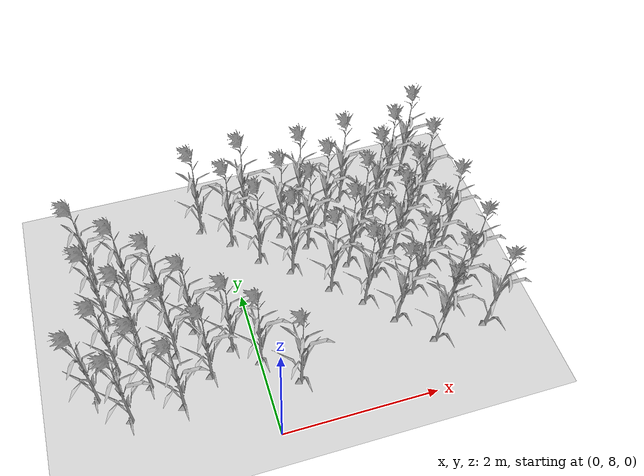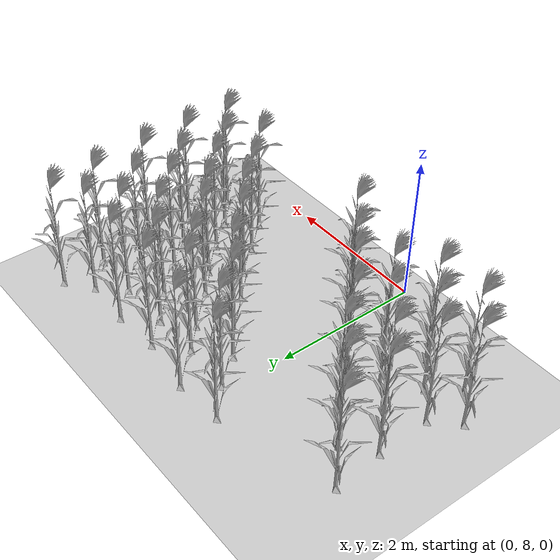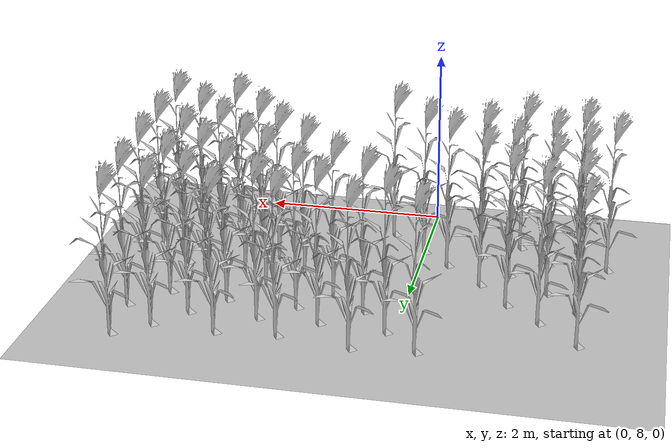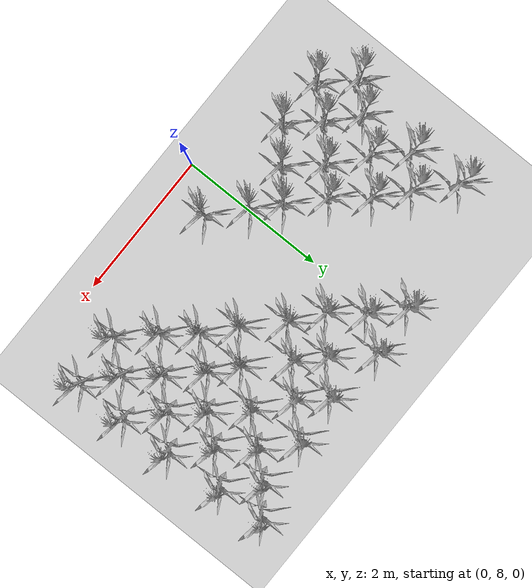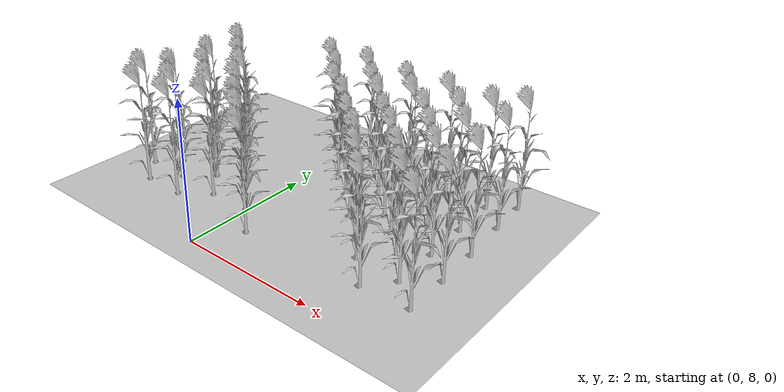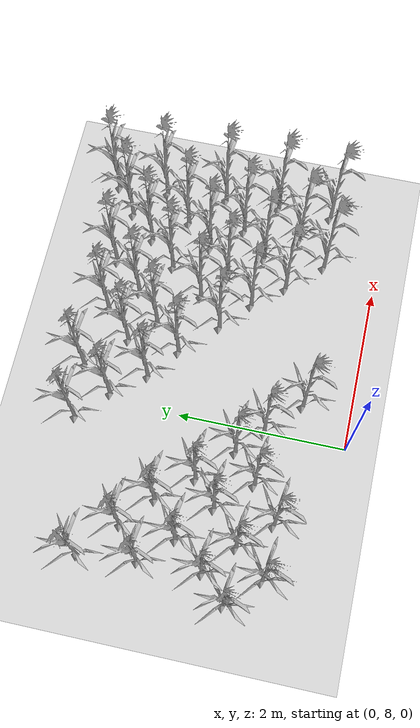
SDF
<sdf version="1.7">
 <world name="farmland_world">
  <model name="ground_plane">
   <static>1</static>
   <link name="link">
    <collision name="collision">
     <geometry><plane><normal>0 0 1</normal><size>40.0 40.0</size></plane></geometry>
     <surface><friction><ode><mu>100</mu><mu2>50</mu2></ode></friction></surface>
    </collision>
    <visual name="visual">
     <cast_shadows>0</cast_shadows>
     <geometry><plane><normal>0 0 1</normal><size>40.0 40.0</size></plane></geometry>
     <material>
      <script><uri>file://media/materials/scripts/gazebo.material</uri><name>Gazebo/Grey</name></script>
     </material>
    </visual>
   </link>
  </model>
  <model name="tree_3_147">
   <static>1</static>
   <link name="link">
    <collision name="collision">
     <geometry><mesh><uri>model://Corn_low_poly/corn.obj</uri><scale>1 1 1</scale></mesh></geometry>
     <surface><friction><ode><mu>100</mu><mu2>50</mu2></ode></friction></surface>
    </collision>
    <visual name="visual">
     <geometry><mesh><uri>model://Corn_low_poly/corn.obj</uri><scale>1 1 1</scale></mesh></geometry>
    </visual>
   </link>
   <pose>-1.6698832942147737 8.684003580478421 0 0 0 0</pose>
  </model>
  <model name="tree_3_148">
   <static>1</static>
   <link name="link">
    <collision name="collision">
     <geometry><mesh><uri>model://Corn_low_poly/corn.obj</uri><scale>1 1 1</scale></mesh></geometry>
     <surface><friction><ode><mu>100</mu><mu2>50</mu2></ode></friction></surface>
    </collision>
    <visual name="visual">
     <geometry><mesh><uri>model://Corn_low_poly/corn.obj</uri><scale>1 1 1</scale></mesh></geometry>
    </visual>
   </link>
   <pose>-2.0231028633627925 9.056360033352803 0 0 0 0</pose>
  </model>
  <model name="tree_3_188">
   <static>1</static>
   <link name="link">
    <collision name="collision">
     <geometry><mesh><uri>model://Corn_low_poly/corn.obj</uri><scale>1 1 1</scale></mesh></geometry>
     <surface><friction><ode><mu>100</mu><mu2>50</mu2></ode></friction></surface>
    </collision>
    <visual name="visual">
     <geometry><mesh><uri>model://Corn_low_poly/corn.obj</uri><scale>1 1 1</scale></mesh></geometry>
    </visual>
   </link>
   <pose>-1.0324576663026956 8.67484243706629 0 0 0 0</pose>
  </model>
  <model name="tree_3_189">
   <static>1</static>
   <link name="link">
    <collision name="collision">
     <geometry><mesh><uri>model://Corn_low_poly/corn.obj</uri><scale>1 1 1</scale></mesh></geometry>
     <surface><friction><ode><mu>100</mu><mu2>50</mu2></ode></friction></surface>
    </collision>
    <visual name="visual">
     <geometry><mesh><uri>model://Corn_low_poly/corn.obj</uri><scale>1 1 1</scale></mesh></geometry>
    </visual>
   </link>
   <pose>-1.3681245685104535 9.045092246789922 0 0 0 0</pose>
  </model>
  <model name="tree_3_190">
   <static>1</static>
   <link name="link">
    <collision name="collision">
     <geometry><mesh><uri>model://Corn_low_poly/corn.obj</uri><scale>1 1 1</scale></mesh></geometry>
     <surface><friction><ode><mu>100</mu><mu2>50</mu2></ode></friction></surface>
    </collision>
    <visual name="visual">
     <geometry><mesh><uri>model://Corn_low_poly/corn.obj</uri><scale>1 1 1</scale></mesh></geometry>
    </visual>
   </link>
   <pose>-1.7273456111712864 9.359587153147258 0 0 0 0</pose>
  </model>
  <model name="tree_3_230">
   <static>1</static>
   <link name="link">
    <collision name="collision">
     <geometry><mesh><uri>model://Corn_low_poly/corn.obj</uri><scale>1 1 1</scale></mesh></geometry>
     <surface><friction><ode><mu>100</mu><mu2>50</mu2></ode></friction></surface>
    </collision>
    <visual name="visual">
     <geometry><mesh><uri>model://Corn_low_poly/corn.obj</uri><scale>1 1 1</scale></mesh></geometry>
    </visual>
   </link>
   <pose>-0.6227697089116335 8.983831732793778 0 0 0 0</pose>
  </model>
  <model name="tree_3_231">
   <static>1</static>
   <link name="link">
    <collision name="collision">
     <geometry><mesh><uri>model://Corn_low_poly/corn.obj</uri><scale>1 1 1</scale></mesh></geometry>
     <surface><friction><ode><mu>100</mu><mu2>50</mu2></ode></friction></surface>
    </collision>
    <visual name="visual">
     <geometry><mesh><uri>model://Corn_low_poly/corn.obj</uri><scale>1 1 1</scale></mesh></geometry>
    </visual>
   </link>
   <pose>-0.9834032215938407 9.381716510900937 0 0 0 0</pose>
  </model>
  <model name="tree_3_232">
   <static>1</static>
   <link name="link">
    <collision name="collision">
     <geometry><mesh><uri>model://Corn_low_poly/corn.obj</uri><scale>1 1 1</scale></mesh></geometry>
     <surface><friction><ode><mu>100</mu><mu2>50</mu2></ode></friction></surface>
    </collision>
    <visual name="visual">
     <geometry><mesh><uri>model://Corn_low_poly/corn.obj</uri><scale>1 1 1</scale></mesh></geometry>
    </visual>
   </link>
   <pose>-1.423567346140039 9.731796113373099 0 0 0 0</pose>
  </model>
  <model name="tree_3_233">
   <static>1</static>
   <link name="link">
    <collision name="collision">
     <geometry><mesh><uri>model://Corn_low_poly/corn.obj</uri><scale>1 1 1</scale></mesh></geometry>
     <surface><friction><ode><mu>100</mu><mu2>50</mu2></ode></friction></surface>
    </collision>
    <visual name="visual">
     <geometry><mesh><uri>model://Corn_low_poly/corn.obj</uri><scale>1 1 1</scale></mesh></geometry>
    </visual>
   </link>
   <pose>-1.7516886819659563 10.099647845330976 0 0 0 0</pose>
  </model>
  <model name="tree_3_270">
   <static>1</static>
   <link name="link">
    <collision name="collision">
     <geometry><mesh><uri>model://Corn_low_poly/corn.obj</uri><scale>1 1 1</scale></mesh></geometry>
     <surface><friction><ode><mu>100</mu><mu2>50</mu2></ode></friction></surface>
    </collision>
    <visual name="visual">
     <geometry><mesh><uri>model://Corn_low_poly/corn.obj</uri><scale>1 1 1</scale></mesh></geometry>
    </visual>
   </link>
   <pose>0.4287412737426988 8.60904060151284 0 0 0 0</pose>
  </model>
  <model name="tree_3_271">
   <static>1</static>
   <link name="link">
    <collision name="collision">
     <geometry><mesh><uri>model://Corn_low_poly/corn.obj</uri><scale>1 1 1</scale></mesh></geometry>
     <surface><friction><ode><mu>100</mu><mu2>50</mu2></ode></friction></surface>
    </collision>
    <visual name="visual">
     <geometry><mesh><uri>model://Corn_low_poly/corn.obj</uri><scale>1 1 1</scale></mesh></geometry>
    </visual>
   </link>
   <pose>0.01727305964461877 8.998061278527281 0 0 0 0</pose>
  </model>
  <model name="tree_3_272">
   <static>1</static>
   <link name="link">
    <collision name="collision">
     <geometry><mesh><uri>model://Corn_low_poly/corn.obj</uri><scale>1 1 1</scale></mesh></geometry>
     <surface><friction><ode><mu>100</mu><mu2>50</mu2></ode></friction></surface>
    </collision>
    <visual name="visual">
     <geometry><mesh><uri>model://Corn_low_poly/corn.obj</uri><scale>1 1 1</scale></mesh></geometry>
    </visual>
   </link>
   <pose>-0.2862148187049493 9.278467164036151 0 0 0 0</pose>
  </model>
  <model name="tree_3_273">
   <static>1</static>
   <link name="link">
    <collision name="collision">
     <geometry><mesh><uri>model://Corn_low_poly/corn.obj</uri><scale>1 1 1</scale></mesh></geometry>
     <surface><friction><ode><mu>100</mu><mu2>50</mu2></ode></friction></surface>
    </collision>
    <visual name="visual">
     <geometry><mesh><uri>model://Corn_low_poly/corn.obj</uri><scale>1 1 1</scale></mesh></geometry>
    </visual>
   </link>
   <pose>-0.6956438976033296 9.661832379889814 0 0 0 0</pose>
  </model>
  <model name="tree_3_274">
   <static>1</static>
   <link name="link">
    <collision name="collision">
     <geometry><mesh><uri>model://Corn_low_poly/corn.obj</uri><scale>1 1 1</scale></mesh></geometry>
     <surface><friction><ode><mu>100</mu><mu2>50</mu2></ode></friction></surface>
    </collision>
    <visual name="visual">
     <geometry><mesh><uri>model://Corn_low_poly/corn.obj</uri><scale>1 1 1</scale></mesh></geometry>
    </visual>
   </link>
   <pose>-1.026138375841834 10.068304449249503 0 0 0 0</pose>
  </model>
  <model name="tree_3_275">
   <static>1</static>
   <link name="link">
    <collision name="collision">
     <geometry><mesh><uri>model://Corn_low_poly/corn.obj</uri><scale>1 1 1</scale></mesh></geometry>
     <surface><friction><ode><mu>100</mu><mu2>50</mu2></ode></friction></surface>
    </collision>
    <visual name="visual">
     <geometry><mesh><uri>model://Corn_low_poly/corn.obj</uri><scale>1 1 1</scale></mesh></geometry>
    </visual>
   </link>
   <pose>-1.3937179532228703 10.391156315983512 0 0 0 0</pose>
  </model>
  <model name="tree_3_276">
   <static>1</static>
   <link name="link">
    <collision name="collision">
     <geometry><mesh><uri>model://Corn_low_poly/corn.obj</uri><scale>1 1 1</scale></mesh></geometry>
     <surface><friction><ode><mu>100</mu><mu2>50</mu2></ode></friction></surface>
    </collision>
    <visual name="visual">
     <geometry><mesh><uri>model://Corn_low_poly/corn.obj</uri><scale>1 1 1</scale></mesh></geometry>
    </visual>
   </link>
   <pose>-1.8165411724044094 10.785292326297734 0 0 0 0</pose>
  </model>
  <model name="tree_3_318">
   <static>1</static>
   <link name="link">
    <collision name="collision">
     <geometry><mesh><uri>model://Corn_low_poly/corn.obj</uri><scale>1 1 1</scale></mesh></geometry>
     <surface><friction><ode><mu>100</mu><mu2>50</mu2></ode></friction></surface>
    </collision>
    <visual name="visual">
     <geometry><mesh><uri>model://Corn_low_poly/corn.obj</uri><scale>1 1 1</scale></mesh></geometry>
    </visual>
   </link>
   <pose>2.2659452892722256 8.682668257066688 0 0 0 0</pose>
  </model>
  <model name="tree_3_319">
   <static>1</static>
   <link name="link">
    <collision name="collision">
     <geometry><mesh><uri>model://Corn_low_poly/corn.obj</uri><scale>1 1 1</scale></mesh></geometry>
     <surface><friction><ode><mu>100</mu><mu2>50</mu2></ode></friction></surface>
    </collision>
    <visual name="visual">
     <geometry><mesh><uri>model://Corn_low_poly/corn.obj</uri><scale>1 1 1</scale></mesh></geometry>
    </visual>
   </link>
   <pose>1.8826716434509898 9.09845080587184 0 0 0 0</pose>
  </model>
  <model name="tree_3_320">
   <static>1</static>
   <link name="link">
    <collision name="collision">
     <geometry><mesh><uri>model://Corn_low_poly/corn.obj</uri><scale>1 1 1</scale></mesh></geometry>
     <surface><friction><ode><mu>100</mu><mu2>50</mu2></ode></friction></surface>
    </collision>
    <visual name="visual">
     <geometry><mesh><uri>model://Corn_low_poly/corn.obj</uri><scale>1 1 1</scale></mesh></geometry>
    </visual>
   </link>
   <pose>1.5743008408131518 9.467142644033313 0 0 0 0</pose>
  </model>
  <model name="tree_3_321">
   <static>1</static>
   <link name="link">
    <collision name="collision">
     <geometry><mesh><uri>model://Corn_low_poly/corn.obj</uri><scale>1 1 1</scale></mesh></geometry>
     <surface><friction><ode><mu>100</mu><mu2>50</mu2></ode></friction></surface>
    </collision>
    <visual name="visual">
     <geometry><mesh><uri>model://Corn_low_poly/corn.obj</uri><scale>1 1 1</scale></mesh></geometry>
    </visual>
   </link>
   <pose>1.205267989947534 9.788326338943657 0 0 0 0</pose>
  </model>
  <model name="tree_3_322">
   <static>1</static>
   <link name="link">
    <collision name="collision">
     <geometry><mesh><uri>model://Corn_low_poly/corn.obj</uri><scale>1 1 1</scale></mesh></geometry>
     <surface><friction><ode><mu>100</mu><mu2>50</mu2></ode></friction></surface>
    </collision>
    <visual name="visual">
     <geometry><mesh><uri>model://Corn_low_poly/corn.obj</uri><scale>1 1 1</scale></mesh></geometry>
    </visual>
   </link>
   <pose>0.7910316731295477 10.206642116688158 0 0 0 0</pose>
  </model>
  <model name="tree_3_323">
   <static>1</static>
   <link name="link">
    <collision name="collision">
     <geometry><mesh><uri>model://Corn_low_poly/corn.obj</uri><scale>1 1 1</scale></mesh></geometry>
     <surface><friction><ode><mu>100</mu><mu2>50</mu2></ode></friction></surface>
    </collision>
    <visual name="visual">
     <geometry><mesh><uri>model://Corn_low_poly/corn.obj</uri><scale>1 1 1</scale></mesh></geometry>
    </visual>
   </link>
   <pose>0.40963449650853134 10.497197354040265 0 0 0 0</pose>
  </model>
  <model name="tree_3_324">
   <static>1</static>
   <link name="link">
    <collision name="collision">
     <geometry><mesh><uri>model://Corn_low_poly/corn.obj</uri><scale>1 1 1</scale></mesh></geometry>
     <surface><friction><ode><mu>100</mu><mu2>50</mu2></ode></friction></surface>
    </collision>
    <visual name="visual">
     <geometry><mesh><uri>model://Corn_low_poly/corn.obj</uri><scale>1 1 1</scale></mesh></geometry>
    </visual>
   </link>
   <pose>0.1059369709105368 10.885849402361316 0 0 0 0</pose>
  </model>
  <model name="tree_3_325">
   <static>1</static>
   <link name="link">
    <collision name="collision">
     <geometry><mesh><uri>model://Corn_low_poly/corn.obj</uri><scale>1 1 1</scale></mesh></geometry>
     <surface><friction><ode><mu>100</mu><mu2>50</mu2></ode></friction></surface>
    </collision>
    <visual name="visual">
     <geometry><mesh><uri>model://Corn_low_poly/corn.obj</uri><scale>1 1 1</scale></mesh></geometry>
    </visual>
   </link>
   <pose>-0.25831195070754537 11.223044054048293 0 0 0 0</pose>
  </model>
  <model name="tree_3_362">
   <static>1</static>
   <link name="link">
    <collision name="collision">
     <geometry><mesh><uri>model://Corn_low_poly/corn.obj</uri><scale>1 1 1</scale></mesh></geometry>
     <surface><friction><ode><mu>100</mu><mu2>50</mu2></ode></friction></surface>
    </collision>
    <visual name="visual">
     <geometry><mesh><uri>model://Corn_low_poly/corn.obj</uri><scale>1 1 1</scale></mesh></geometry>
    </visual>
   </link>
   <pose>2.9679946847305207 8.71973789109385 0 0 0 0</pose>
  </model>
  <model name="tree_3_363">
   <static>1</static>
   <link name="link">
    <collision name="collision">
     <geometry><mesh><uri>model://Corn_low_poly/corn.obj</uri><scale>1 1 1</scale></mesh></geometry>
     <surface><friction><ode><mu>100</mu><mu2>50</mu2></ode></friction></surface>
    </collision>
    <visual name="visual">
     <geometry><mesh><uri>model://Corn_low_poly/corn.obj</uri><scale>1 1 1</scale></mesh></geometry>
    </visual>
   </link>
   <pose>2.5686562969750737 9.050610059643711 0 0 0 0</pose>
  </model>
  <model name="tree_3_364">
   <static>1</static>
   <link name="link">
    <collision name="collision">
     <geometry><mesh><uri>model://Corn_low_poly/corn.obj</uri><scale>1 1 1</scale></mesh></geometry>
     <surface><friction><ode><mu>100</mu><mu2>50</mu2></ode></friction></surface>
    </collision>
    <visual name="visual">
     <geometry><mesh><uri>model://Corn_low_poly/corn.obj</uri><scale>1 1 1</scale></mesh></geometry>
    </visual>
   </link>
   <pose>2.2384284833241432 9.437294065062344 0 0 0 0</pose>
  </model>
  <model name="tree_3_365">
   <static>1</static>
   <link name="link">
    <collision name="collision">
     <geometry><mesh><uri>model://Corn_low_poly/corn.obj</uri><scale>1 1 1</scale></mesh></geometry>
     <surface><friction><ode><mu>100</mu><mu2>50</mu2></ode></friction></surface>
    </collision>
    <visual name="visual">
     <geometry><mesh><uri>model://Corn_low_poly/corn.obj</uri><scale>1 1 1</scale></mesh></geometry>
    </visual>
   </link>
   <pose>1.8677602767199182 9.825647747179543 0 0 0 0</pose>
  </model>
  <model name="tree_3_366">
   <static>1</static>
   <link name="link">
    <collision name="collision">
     <geometry><mesh><uri>model://Corn_low_poly/corn.obj</uri><scale>1 1 1</scale></mesh></geometry>
     <surface><friction><ode><mu>100</mu><mu2>50</mu2></ode></friction></surface>
    </collision>
    <visual name="visual">
     <geometry><mesh><uri>model://Corn_low_poly/corn.obj</uri><scale>1 1 1</scale></mesh></geometry>
    </visual>
   </link>
   <pose>1.5584682967251717 10.099687822793555 0 0 0 0</pose>
  </model>
  <model name="tree_3_367">
   <static>1</static>
   <link name="link">
    <collision name="collision">
     <geometry><mesh><uri>model://Corn_low_poly/corn.obj</uri><scale>1 1 1</scale></mesh></geometry>
     <surface><friction><ode><mu>100</mu><mu2>50</mu2></ode></friction></surface>
    </collision>
    <visual name="visual">
     <geometry><mesh><uri>model://Corn_low_poly/corn.obj</uri><scale>1 1 1</scale></mesh></geometry>
    </visual>
   </link>
   <pose>1.1150406828388488 10.548499294499596 0 0 0 0</pose>
  </model>
  <model name="tree_3_368">
   <static>1</static>
   <link name="link">
    <collision name="collision">
     <geometry><mesh><uri>model://Corn_low_poly/corn.obj</uri><scale>1 1 1</scale></mesh></geometry>
     <surface><friction><ode><mu>100</mu><mu2>50</mu2></ode></friction></surface>
    </collision>
    <visual name="visual">
     <geometry><mesh><uri>model://Corn_low_poly/corn.obj</uri><scale>1 1 1</scale></mesh></geometry>
    </visual>
   </link>
   <pose>0.8153150615937625 10.836321313926456 0 0 0 0</pose>
  </model>
  <model name="tree_3_369">
   <static>1</static>
   <link name="link">
    <collision name="collision">
     <geometry><mesh><uri>model://Corn_low_poly/corn.obj</uri><scale>1 1 1</scale></mesh></geometry>
     <surface><friction><ode><mu>100</mu><mu2>50</mu2></ode></friction></surface>
    </collision>
    <visual name="visual">
     <geometry><mesh><uri>model://Corn_low_poly/corn.obj</uri><scale>1 1 1</scale></mesh></geometry>
    </visual>
   </link>
   <pose>0.3965142587510725 11.277440954952464 0 0 0 0</pose>
  </model>
  <model name="tree_3_408">
   <static>1</static>
   <link name="link">
    <collision name="collision">
     <geometry><mesh><uri>model://Corn_low_poly/corn.obj</uri><scale>1 1 1</scale></mesh></geometry>
     <surface><friction><ode><mu>100</mu><mu2>50</mu2></ode></friction></surface>
    </collision>
    <visual name="visual">
     <geometry><mesh><uri>model://Corn_low_poly/corn.obj</uri><scale>1 1 1</scale></mesh></geometry>
    </visual>
   </link>
   <pose>2.962632824036587 9.390106723256011 0 0 0 0</pose>
  </model>
  <model name="tree_3_409">
   <static>1</static>
   <link name="link">
    <collision name="collision">
     <geometry><mesh><uri>model://Corn_low_poly/corn.obj</uri><scale>1 1 1</scale></mesh></geometry>
     <surface><friction><ode><mu>100</mu><mu2>50</mu2></ode></friction></surface>
    </collision>
    <visual name="visual">
     <geometry><mesh><uri>model://Corn_low_poly/corn.obj</uri><scale>1 1 1</scale></mesh></geometry>
    </visual>
   </link>
   <pose>2.552551489764864 9.75694892664739 0 0 0 0</pose>
  </model>
  <model name="tree_3_410">
   <static>1</static>
   <link name="link">
    <collision name="collision">
     <geometry><mesh><uri>model://Corn_low_poly/corn.obj</uri><scale>1 1 1</scale></mesh></geometry>
     <surface><friction><ode><mu>100</mu><mu2>50</mu2></ode></friction></surface>
    </collision>
    <visual name="visual">
     <geometry><mesh><uri>model://Corn_low_poly/corn.obj</uri><scale>1 1 1</scale></mesh></geometry>
    </visual>
   </link>
   <pose>2.2333144717376947 10.125917387937855 0 0 0 0</pose>
  </model>
  <model name="tree_3_411">
   <static>1</static>
   <link name="link">
    <collision name="collision">
     <geometry><mesh><uri>model://Corn_low_poly/corn.obj</uri><scale>1 1 1</scale></mesh></geometry>
     <surface><friction><ode><mu>100</mu><mu2>50</mu2></ode></friction></surface>
    </collision>
    <visual name="visual">
     <geometry><mesh><uri>model://Corn_low_poly/corn.obj</uri><scale>1 1 1</scale></mesh></geometry>
    </visual>
   </link>
   <pose>1.8746093467280756 10.525610531884338 0 0 0 0</pose>
  </model>
  <model name="tree_3_412">
   <static>1</static>
   <link name="link">
    <collision name="collision">
     <geometry><mesh><uri>model://Corn_low_poly/corn.obj</uri><scale>1 1 1</scale></mesh></geometry>
     <surface><friction><ode><mu>100</mu><mu2>50</mu2></ode></friction></surface>
    </collision>
    <visual name="visual">
     <geometry><mesh><uri>model://Corn_low_poly/corn.obj</uri><scale>1 1 1</scale></mesh></geometry>
    </visual>
   </link>
   <pose>1.457534663864073 10.85328000301045 0 0 0 0</pose>
  </model>
  <model name="tree_3_413">
   <static>1</static>
   <link name="link">
    <collision name="collision">
     <geometry><mesh><uri>model://Corn_low_poly/corn.obj</uri><scale>1 1 1</scale></mesh></geometry>
     <surface><friction><ode><mu>100</mu><mu2>50</mu2></ode></friction></surface>
    </collision>
    <visual name="visual">
     <geometry><mesh><uri>model://Corn_low_poly/corn.obj</uri><scale>1 1 1</scale></mesh></geometry>
    </visual>
   </link>
   <pose>1.171251933571681 11.172151817374877 0 0 0 0</pose>
  </model>
  <model name="tree_3_454">
   <static>1</static>
   <link name="link">
    <collision name="collision">
     <geometry><mesh><uri>model://Corn_low_poly/corn.obj</uri><scale>1 1 1</scale></mesh></geometry>
     <surface><friction><ode><mu>100</mu><mu2>50</mu2></ode></friction></surface>
    </collision>
    <visual name="visual">
     <geometry><mesh><uri>model://Corn_low_poly/corn.obj</uri><scale>1 1 1</scale></mesh></geometry>
    </visual>
   </link>
   <pose>2.9331674626816464 10.068758123493417 0 0 0 0</pose>
  </model>
  <model name="tree_3_455">
   <static>1</static>
   <link name="link">
    <collision name="collision">
     <geometry><mesh><uri>model://Corn_low_poly/corn.obj</uri><scale>1 1 1</scale></mesh></geometry>
     <surface><friction><ode><mu>100</mu><mu2>50</mu2></ode></friction></surface>
    </collision>
    <visual name="visual">
     <geometry><mesh><uri>model://Corn_low_poly/corn.obj</uri><scale>1 1 1</scale></mesh></geometry>
    </visual>
   </link>
   <pose>2.5190929007888587 10.465234822400545 0 0 0 0</pose>
  </model>
  <model name="tree_3_456">
   <static>1</static>
   <link name="link">
    <collision name="collision">
     <geometry><mesh><uri>model://Corn_low_poly/corn.obj</uri><scale>1 1 1</scale></mesh></geometry>
     <surface><friction><ode><mu>100</mu><mu2>50</mu2></ode></friction></surface>
    </collision>
    <visual name="visual">
     <geometry><mesh><uri>model://Corn_low_poly/corn.obj</uri><scale>1 1 1</scale></mesh></geometry>
    </visual>
   </link>
   <pose>2.1913614518415736 10.863527120037265 0 0 0 0</pose>
  </model>
  <model name="tree_3_457">
   <static>1</static>
   <link name="link">
    <collision name="collision">
     <geometry><mesh><uri>model://Corn_low_poly/corn.obj</uri><scale>1 1 1</scale></mesh></geometry>
     <surface><friction><ode><mu>100</mu><mu2>50</mu2></ode></friction></surface>
    </collision>
    <visual name="visual">
     <geometry><mesh><uri>model://Corn_low_poly/corn.obj</uri><scale>1 1 1</scale></mesh></geometry>
    </visual>
   </link>
   <pose>1.8084850595497444 11.224639016379951 0 0 0 0</pose>
  </model>
  <model name="tree_3_500">
   <static>1</static>
   <link name="link">
    <collision name="collision">
     <geometry><mesh><uri>model://Corn_low_poly/corn.obj</uri><scale>1 1 1</scale></mesh></geometry>
     <surface><friction><ode><mu>100</mu><mu2>50</mu2></ode></friction></surface>
    </collision>
    <visual name="visual">
     <geometry><mesh><uri>model://Corn_low_poly/corn.obj</uri><scale>1 1 1</scale></mesh></geometry>
    </visual>
   </link>
   <pose>2.8747882011666905 10.825631736749491 0 0 0 0</pose>
  </model>
  <model name="tree_3_501">
   <static>1</static>
   <link name="link">
    <collision name="collision">
     <geometry><mesh><uri>model://Corn_low_poly/corn.obj</uri><scale>1 1 1</scale></mesh></geometry>
     <surface><friction><ode><mu>100</mu><mu2>50</mu2></ode></friction></surface>
    </collision>
    <visual name="visual">
     <geometry><mesh><uri>model://Corn_low_poly/corn.obj</uri><scale>1 1 1</scale></mesh></geometry>
    </visual>
   </link>
   <pose>2.488319710127559 11.186259729574738 0 0 0 0</pose>
  </model>
  <model name="tree_3_546">
   <static>1</static>
   <link name="link">
    <collision name="collision">
     <geometry><mesh><uri>model://Corn_low_poly/corn.obj</uri><scale>1 1 1</scale></mesh></geometry>
     <surface><friction><ode><mu>100</mu><mu2>50</mu2></ode></friction></surface>
    </collision>
    <visual name="visual">
     <geometry><mesh><uri>model://Corn_low_poly/corn.obj</uri><scale>1 1 1</scale></mesh></geometry>
    </visual>
   </link>
   <pose>2.8346097501831555 11.449783839549827 0 0 0 0</pose>
  </model>
 </world>
</sdf>
